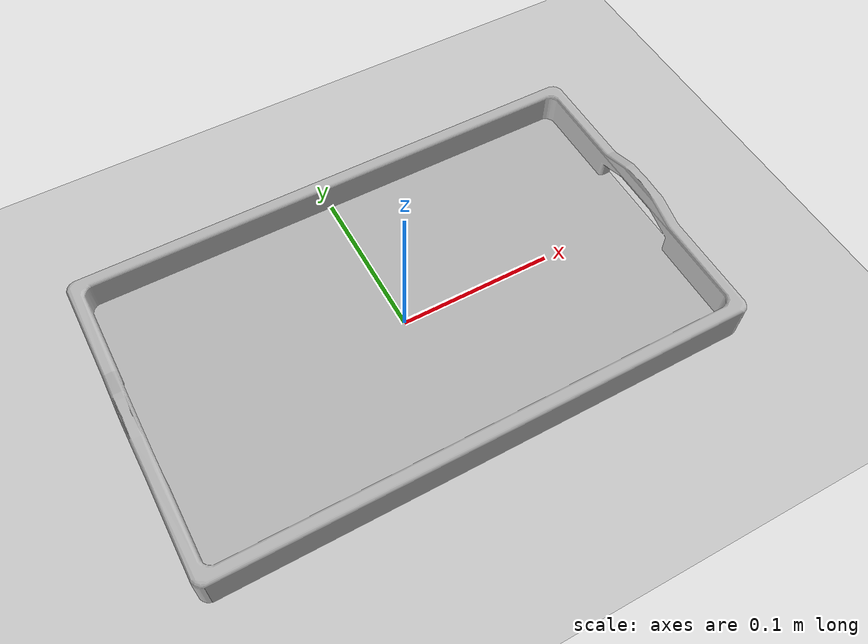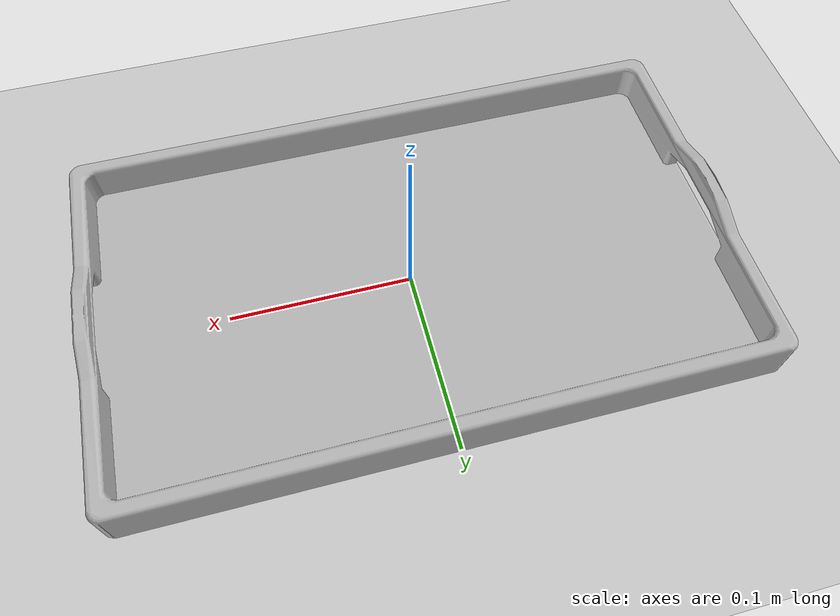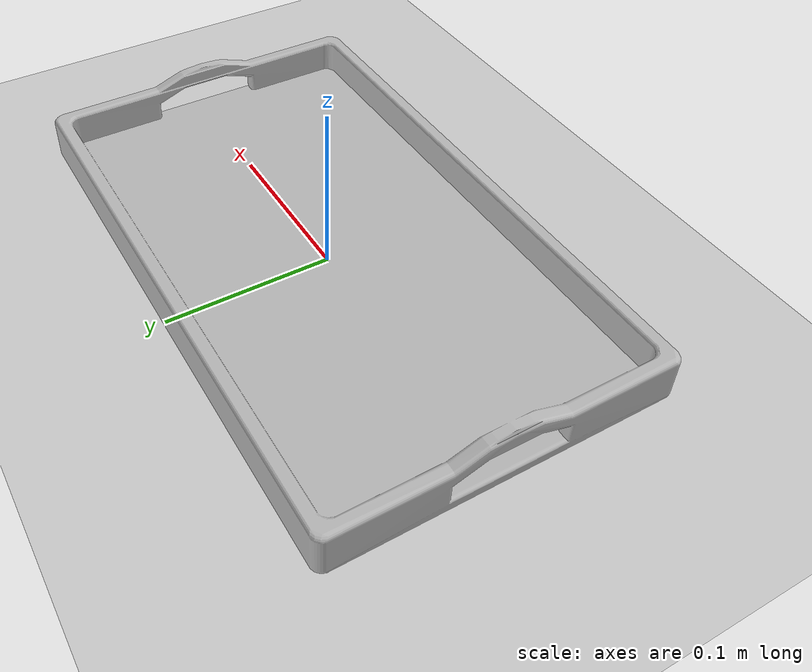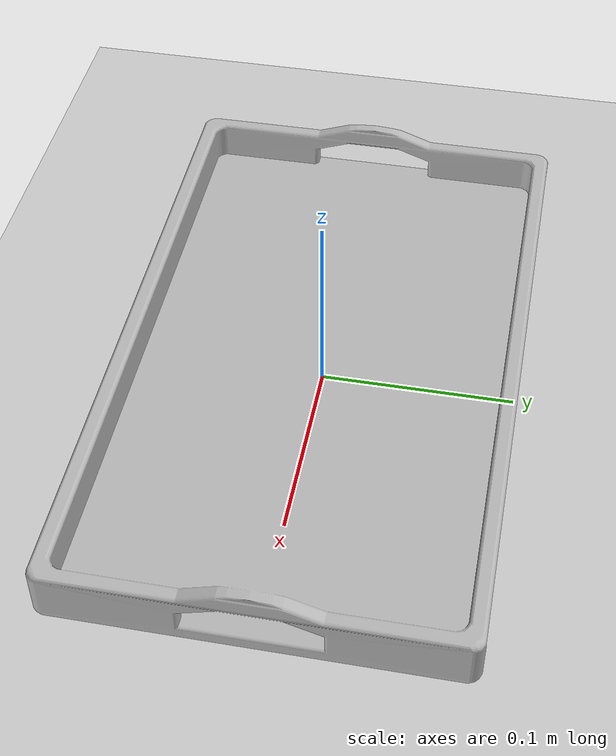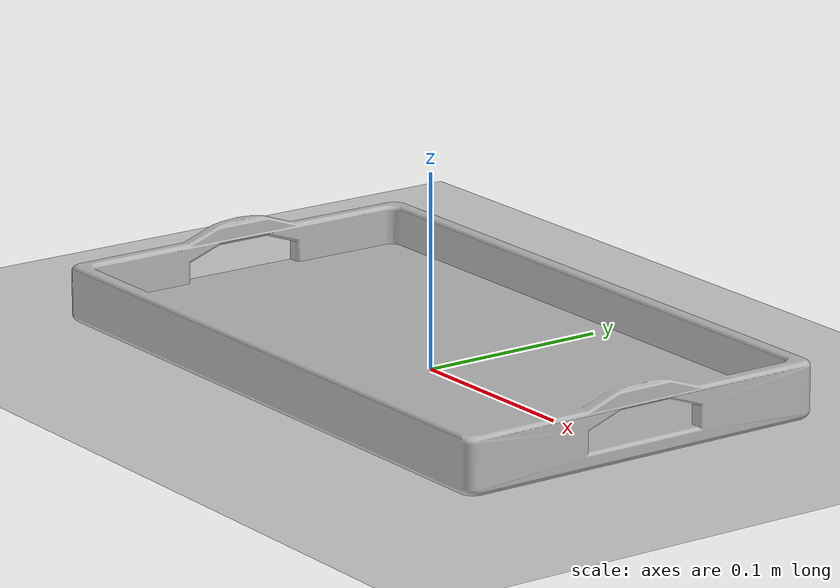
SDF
<sdf version='1.10'>
    <world name='shapes'>
        <plugin filename="gz-sim-physics-system" name="gz::sim::systems::Physics">
        </plugin>
        <plugin filename="gz-sim-user-commands-system" name="gz::sim::systems::UserCommands">
        </plugin>
        <plugin filename="gz-sim-scene-broadcaster-system" name="gz::sim::systems::SceneBroadcaster">
        </plugin>
        <plugin filename="gz-sim-sensors-system" name="gz::sim::systems::Sensors">
            <render_engine>ogre2</render_engine>
        </plugin>

        <scene>
            <ambient>1 1 1 1</ambient>
            <background>0.800000012 0.800000012 0.800000012 1</background>
            <shadows>true</shadows>
        </scene>
        <gravity>0 0 -9.8000000000000007</gravity>
        <magnetic_field>5.5644999999999998e-06 2.2875799999999999e-05 -4.2388400000000002e-05</magnetic_field>
        <atmosphere type='adiabatic' />
        <physics type='ode'>
            <max_step_size>0.001</max_step_size>
            <real_time_factor>1</real_time_factor>
            <real_time_update_rate>1000</real_time_update_rate>
        </physics>
        <model name='ground_plane'>
            <static>true</static>
            <link name='link'>
            <collision name='collision'>
                <geometry>
                    <plane>
                        <normal>0 0 1</normal>
                        <size>100 100</size>
                    </plane>
                </geometry>
                <surface>
                    <friction>
                        <ode />
                    </friction>
                    <bounce />
                    <contact />
                </surface>
            </collision>
            <visual name='visual'>
                <geometry>
                    <plane>
                        <normal>0 0 1</normal>
                        <size>100 100</size>
                    </plane>
                </geometry>
                <material>
                    <ambient>0.800000012 0.800000012 0.800000012 1</ambient>
                    <diffuse>0.800000012 0.800000012 0.800000012 1</diffuse>
                    <specular>0.800000012 0.800000012 0.800000012 1</specular>
                </material>
            </visual>
            <pose>0 0 0 0 0 0</pose>
            <inertial>
                <pose>0 0 0 0 0 0</pose>
                <mass>1</mass>
                <inertia>
                    <ixx>1</ixx>
                    <ixy>0</ixy>
                    <ixz>0</ixz>
                    <iyy>1</iyy>
                    <iyz>0</iyz>
                    <izz>1</izz>
                </inertia>
            </inertial>
            <enable_wind>false</enable_wind>
            </link>
            <pose>0 0 0 0 0 0</pose>
            <self_collide>false</self_collide>
        </model>
        <light name='sun' type='directional'>
            <pose>0 0 10 0 0 0</pose>
            <cast_shadows>true</cast_shadows>
            <intensity>1</intensity>
            <direction>-0.5 0.10000000000000001 -0.90000000000000002</direction>
            <diffuse>0.800000012 0.800000012 0.800000012 1</diffuse>
            <specular>0.200000003 0.200000003 0.200000003 1</specular>
            <attenuation>
                <range>1000</range>
                <linear>0.01</linear>
                <constant>0.90000000000000002</constant>
                <quadratic>0.001</quadratic>
            </attenuation>
            <spot>
                <inner_angle>0</inner_angle>
                <outer_angle>0</outer_angle>
                <falloff>0</falloff>
            </spot>
        </light>

        <include>
            <uri>
                models/DeepBrownWoodenTray
            </uri>
        </include>

    </world>
</sdf>

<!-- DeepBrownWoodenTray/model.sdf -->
<sdf version="1.9">
  <model name="DeepBrownWoodenTray">
    <static>True</static>
    <link name="DeepBrownWoodenTray_link">
      <visual name="DeepBrownWoodenTray_visual">
        <geometry>
          <mesh>
            <uri>assets/visual.obj</uri>
          </mesh>
        </geometry>
      </visual>
    </link>
  </model>
</sdf>
